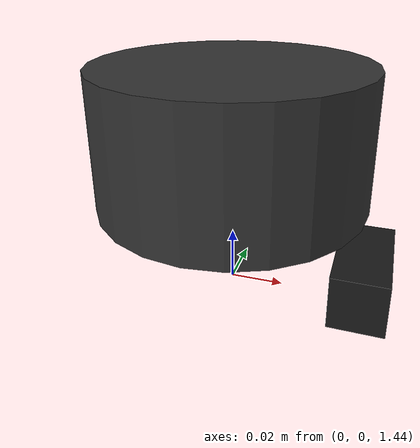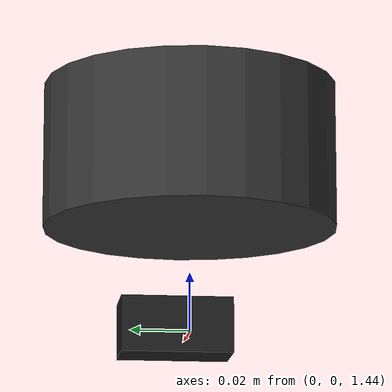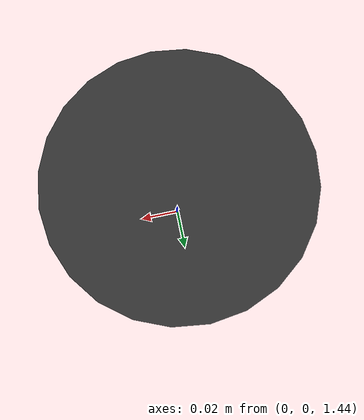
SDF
<?xml version="1.0"?>
<sdf version="1.7">
  <model name="humanoid_robot_with_sensors">
    <pose>0 0 1 0 0 0</pose>
    <static>false</static>

    <!-- Basic humanoid links and joints (simplified) -->
    <link name="base_link">
      <pose>0 0 0 0 0 0</pose>
      <inertial>
        <mass>5.0</mass>
        <inertia>
          <ixx>0.1</ixx>
          <ixy>0.0</ixy>
          <ixz>0.0</ixz>
          <iyy>0.1</iyy>
          <iyz>0.0</iyz>
          <izz>0.1</izz>
        </inertia>
      </inertial>
    </link>

    <link name="torso">
      <pose>0 0 0.15 0 0 0</pose>
      <inertial>
        <mass>8.0</mass>
        <inertia>
          <ixx>0.2</ixx>
          <ixy>0.0</ixy>
          <ixz>0.0</ixz>
          <iyy>0.3</iyy>
          <iyz>0.0</iyz>
          <izz>0.2</izz>
        </inertia>
      </inertial>
    </link>

    <link name="head">
      <pose>0 0 0.4 0 0 0</pose>
      <inertial>
        <mass>1.0</mass>
        <inertia>
          <ixx>0.002</ixx>
          <ixy>0.0</ixy>
          <ixz>0.0</ixz>
          <iyy>0.002</iyy>
          <iyz>0.0</iyz>
          <izz>0.002</izz>
        </inertia>
      </inertial>
    </link>

    <!-- Joints -->
    <joint name="torso_joint" type="fixed">
      <parent>base_link</parent>
      <child>torso</child>
    </joint>

    <joint name="neck_joint" type="revolute">
      <parent>torso</parent>
      <child>head</child>
      <axis>
        <xyz>0 1 0</xyz>
        <limit>
          <lower>-0.5</lower>
          <upper>0.5</upper>
          <effort>10.0</effort>
          <velocity>2.0</velocity>
        </limit>
      </axis>
    </joint>

    <!-- LiDAR Sensor Configuration -->
    <link name="lidar_link">
      <pose>0 0 0.5 0 0 0</pose>  <!-- Positioned on top of head -->
      <inertial>
        <mass>0.5</mass>
        <inertia>
          <ixx>0.001</ixx>
          <ixy>0.0</ixy>
          <ixz>0.0</ixz>
          <iyy>0.001</iyy>
          <iyz>0.0</iyz>
          <izz>0.001</izz>
        </inertia>
      </inertial>

      <visual name="lidar_visual">
        <geometry>
          <cylinder>
            <radius>0.05</radius>
            <length>0.05</length>
          </cylinder>
        </geometry>
        <material>
          <ambient>0.2 0.2 0.2 1</ambient>
          <diffuse>0.2 0.2 0.2 1</diffuse>
        </material>
      </visual>

      <collision name="lidar_collision">
        <geometry>
          <cylinder>
            <radius>0.05</radius>
            <length>0.05</length>
          </cylinder>
        </geometry>
      </collision>
    </link>

    <joint name="lidar_joint" type="fixed">
      <parent>head</parent>
      <child>lidar_link</child>
      <pose>0 0 0.1 0 0 0</pose>
    </joint>

    <!-- LiDAR Sensor -->
    <sensor name="humanoid_lidar" type="ray">
      <pose>0 0 0 0 0 0</pose>
      <visualize>true</visualize>
      <update_rate>10</update_rate>
      <ray>
        <scan>
          <horizontal>
            <!-- 360 degree horizontal scan -->
            <samples>360</samples>
            <resolution>1</resolution>
            <min_angle>-3.14159</min_angle>
            <max_angle>3.14159</max_angle>
          </horizontal>
        </scan>
        <!-- Range parameters -->
        <range>
          <min>0.1</min>
          <max>30.0</max>
          <resolution>0.01</resolution>
        </range>
      </ray>
      <plugin name="lidar_controller" filename="libgazebo_ros_ray_sensor.so">
        <ros>
          <namespace>/humanoid_robot</namespace>
          <remapping>~/out:=scan</remapping>
        </ros>
        <output_type>sensor_msgs/LaserScan</output_type>
      </plugin>
    </sensor>

    <!-- Camera Sensor Configuration -->
    <link name="camera_link">
      <pose>0.05 0 0.45 0 0 0</pose>  <!-- Positioned in head -->
      <inertial>
        <mass>0.1</mass>
        <inertia>
          <ixx>0.0001</ixx>
          <ixy>0.0</ixy>
          <ixz>0.0</ixz>
          <iyy>0.0001</iyy>
          <iyz>0.0</iyz>
          <izz>0.0001</izz>
        </inertia>
      </inertial>

      <visual name="camera_visual">
        <geometry>
          <box>
            <size>0.02 0.04 0.02</size>
          </box>
        </geometry>
        <material>
          <ambient>0.1 0.1 0.1 1</ambient>
          <diffuse>0.1 0.1 0.1 1</diffuse>
        </material>
      </visual>

      <collision name="camera_collision">
        <geometry>
          <box>
            <size>0.02 0.04 0.02</size>
          </box>
        </geometry>
      </collision>
    </link>

    <joint name="camera_joint" type="fixed">
      <parent>head</parent>
      <child>camera_link</child>
    </joint>

    <!-- RGB Camera -->
    <sensor name="humanoid_camera" type="camera">
      <pose>0 0 0 0 0 0</pose>
      <update_rate>30</update_rate>
      <camera name="head_camera">
        <horizontal_fov>1.047</horizontal_fov>  <!-- 60 degrees -->
        <image>
          <width>640</width>
          <height>480</height>
          <format>R8G8B8</format>
        </image>
        <clip>
          <near>0.1</near>
          <far>100</far>
        </clip>
        <noise>
          <type>gaussian</type>
          <mean>0.0</mean>
          <stddev>0.007</stddev>
        </noise>
      </camera>
      <plugin name="camera_controller" filename="libgazebo_ros_camera.so">
        <ros>
          <namespace>/humanoid_robot</namespace>
          <remapping>image_raw:=camera/image_raw</remapping>
          <remapping>camera_info:=camera/camera_info</remapping>
        </ros>
      </plugin>
    </sensor>

    <!-- IMU Sensor Configuration -->
    <link name="imu_link">
      <pose>0 0 0.1 0 0 0</pose>  <!-- Positioned in torso -->
      <inertial>
        <mass>0.01</mass>
        <inertia>
          <ixx>1e-06</ixx>
          <ixy>0</ixy>
          <ixz>0</ixz>
          <iyy>1e-06</iyy>
          <iyz>0</iyz>
          <izz>1e-06</izz>
        </inertia>
      </inertial>
    </link>

    <joint name="imu_joint" type="fixed">
      <parent>torso</parent>
      <child>imu_link</child>
    </joint>

    <!-- IMU Sensor -->
    <sensor name="humanoid_imu" type="imu">
      <pose>0 0 0 0 0 0</pose>
      <update_rate>100</update_rate>
      <topic>imu/data</topic>
      <always_on>true</always_on>
      <plugin name="imu_controller" filename="libgazebo_ros_imu.so">
        <ros>
          <namespace>/humanoid_robot</namespace>
          <remapping>~/out:=imu/data</remapping>
        </ros>
        <initial_orientation_as_reference>false</initial_orientation_as_reference>
      </plugin>
    </sensor>

    <!-- Force/Torque Sensor Configuration -->
    <link name="left_foot">
      <pose>0.05 0 -0.4 0 0 0</pose>
      <inertial>
        <mass>1.0</mass>
        <inertia>
          <ixx>0.001</ixx>
          <ixy>0.0</ixy>
          <ixz>0.0</ixz>
          <iyy>0.001</iyy>
          <iyz>0.0</iyz>
          <izz>0.001</izz>
        </inertia>
      </inertial>
    </link>

    <joint name="left_ankle_joint" type="fixed">
      <parent>base_link</parent>
      <child>left_foot</child>
    </joint>

    <!-- Force/Torque Sensor -->
    <sensor name="left_foot_force_torque" type="force_torque">
      <pose>0 0 0 0 0 0</pose>
      <update_rate>100</update_rate>
      <always_on>true</always_on>
      <force_torque>
        <frame>child</frame>
        <measure_direction>child_to_parent</measure_direction>
      </force_torque>
      <plugin name="ft_sensor_plugin" filename="libgazebo_ros_ft_sensor.so">
        <ros>
          <namespace>/humanoid_robot</namespace>
          <remapping>~/wrench:=left_foot/wrench</remapping>
        </ros>
        <frame_name>left_foot</frame_name>
      </plugin>
    </sensor>

    <!-- GPS Sensor Configuration -->
    <link name="gps_link">
      <pose>0 0 0.55 0 0 0</pose>  <!-- Positioned on top of head -->
      <inertial>
        <mass>0.1</mass>
        <inertia>
          <ixx>0.0001</ixx>
          <ixy>0.0</ixy>
          <ixz>0.0</ixz>
          <iyy>0.0001</iyy>
          <iyz>0.0</iyz>
          <izz>0.0001</izz>
        </inertia>
      </inertial>
    </link>

    <joint name="gps_joint" type="fixed">
      <parent>head</parent>
      <child>gps_link</child>
    </joint>

    <!-- GPS Sensor -->
    <sensor name="humanoid_gps" type="gps">
      <pose>0 0 0 0 0 0</pose>
      <update_rate>1</update_rate>
      <always_on>true</always_on>
      <plugin name="gps_controller" filename="libgazebo_ros_gps.so">
        <ros>
          <namespace>/humanoid_robot</namespace>
          <remapping>~/out:=gps/fix</remapping>
        </ros>
        <frame_name>gps_link</frame_name>
        <update_rate>1.0</update_rate>
      </plugin>
    </sensor>

    <!-- Gazebo plugin for ROS control -->
    <plugin name="humanoid_controller" filename="libgazebo_ros_control.so">
      <robotNamespace>/humanoid_robot</robotNamespace>
      <robotParam>robot_description</robotParam>
    </plugin>
  </model>
</sdf>
